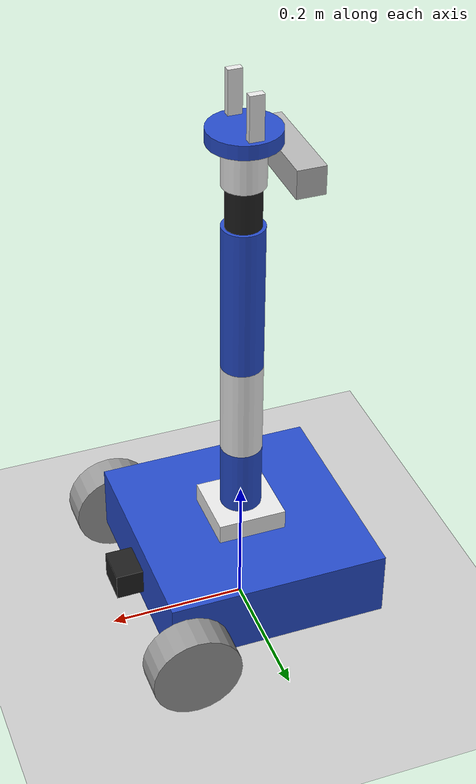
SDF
<sdf version="1.7">
 <world name="default">
  <model name="ground_plane">
   <static>1</static>
   <link name="link">
    <collision name="collision">
     <geometry><plane><normal>0 0 1</normal><size>100 100</size></plane></geometry>
     <surface><friction><ode><mu>100</mu><mu2>50</mu2></ode></friction></surface>
    </collision>
    <visual name="visual">
     <cast_shadows>0</cast_shadows>
     <geometry><plane><normal>0 0 1</normal><size>100 100</size></plane></geometry>
     <material>
      <script><uri>file://media/materials/scripts/gazebo.material</uri><name>Gazebo/Grey</name></script>
     </material>
    </visual>
    <velocity_decay><linear>0</linear><angular>0</angular></velocity_decay>
   </link>
  </model>
  <model name="six_arm">
   <link name="base_footprint">
    <inertial>
     <pose>0 0 0.112933 0 -0 0</pose>
     <mass>3.6</mass>
     <inertia>
      <ixx>0.0449434</ixx>
      <ixy>0</ixy>
      <ixz>-0.00447747</ixz>
      <iyy>0.0710223</iyy>
      <iyz>0</iyz>
      <izz>0.0496263</izz>
     </inertia>
    </inertial>
    <collision name="base_footprint_fixed_joint_lump__base_link_collision">
     <pose>0 0 0.1034 0 -0 0</pose>
     <geometry><box><size>0.32 0.32 0.1</size></box></geometry>
    </collision>
    <collision name="base_footprint_fixed_joint_lump__back_caster_link_collision_1">
     <pose>-0.14 0 0.0267 0 -0 0</pose>
     <geometry><sphere><radius>0.0267</radius></sphere></geometry>
    </collision>
    <collision name="base_footprint_fixed_joint_lump__camera_link_collision_2">
     <pose>0.18 0 0.0934 0 -0 0</pose>
     <geometry><box><size>0.04 0.055 0.04</size></box></geometry>
    </collision>
    <collision name="base_footprint_fixed_joint_lump__arm_base_link_collision_3">
     <pose>0 0 0.1634 0 -0 0</pose>
     <geometry><box><size>0.1 0.1 0.04</size></box></geometry>
    </collision>
    <collision name="base_footprint_fixed_joint_lump__laser_link_collision_4">
     <pose>0 0 0.1634 0 -0 0</pose>
     <geometry><cylinder><length>0.01</length><radius>0.015</radius></cylinder></geometry>
    </collision>
    <visual name="base_footprint_visual"><geometry><box><size>0.001 0.001 0.001</size></box></geometry></visual>
    <visual name="base_footprint_fixed_joint_lump__base_link_visual_1">
     <pose>0 0 0.1034 0 -0 0</pose>
     <geometry><box><size>0.32 0.32 0.1</size></box></geometry>
     <material>
      <script><name>Gazebo/Blue</name><uri>file://media/materials/scripts/gazebo.material</uri></script>
     </material>
    </visual>
    <visual name="base_footprint_fixed_joint_lump__back_caster_link_visual_2">
     <pose>-0.14 0 0.0267 0 -0 0</pose>
     <geometry><sphere><radius>0.0267</radius></sphere></geometry>
     <material>
      <script><name>Gazebo/Black</name><uri>file://media/materials/scripts/gazebo.material</uri></script>
     </material>
    </visual>
    <visual name="base_footprint_fixed_joint_lump__camera_link_visual_3">
     <pose>0.18 0 0.0934 0 -0 0</pose>
     <geometry><box><size>0.04 0.055 0.04</size></box></geometry>
     <material>
      <script><name>Gazebo/Black</name><uri>file://media/materials/scripts/gazebo.material</uri></script>
     </material>
    </visual>
    <visual name="base_footprint_fixed_joint_lump__arm_base_link_visual_4">
     <pose>0 0 0.1634 0 -0 0</pose>
     <geometry><box><size>0.1 0.1 0.04</size></box></geometry>
     <material>
      <script><name>Gazebo/White</name><uri>file://media/materials/scripts/gazebo.material</uri></script>
     </material>
    </visual>
    <visual name="base_footprint_fixed_joint_lump__laser_link_visual_5">
     <pose>0 0 0.1634 0 -0 0</pose>
     <geometry><cylinder><length>0.02</length><radius>0.031</radius></cylinder></geometry>
     <material>
      <script><name>Gazebo/Black</name><uri>file://media/materials/scripts/gazebo.material</uri></script>
     </material>
    </visual>
    <sensor name="camera_node" type="camera">
     <update_rate>30</update_rate>
     <camera name="head">
      <horizontal_fov>1.39626</horizontal_fov>
      <image><width>1280</width><height>720</height><format>R8G8B8</format></image>
      <clip><near>0.02</near><far>300</far></clip>
      <noise><type>gaussian</type><mean>0</mean><stddev>0.007</stddev></noise>
     </camera>
     <plugin name="gazebo_camera" filename="libgazebo_ros_camera.so">
      <ros><remapping>~/image_raw:=image_raw</remapping><remapping>~/camera_info:=camera_info</remapping></ros>
      <camera_name>camera</camera_name>
      <frame_name>camera_link</frame_name>
      <hack_baseline>0.2</hack_baseline>
     </plugin>
     <pose>0.18 0 0.0934 0 -0 0</pose>
    </sensor>
    <sensor name="lidar" type="ray">
     <update_rate>20</update_rate>
     <visualize>0</visualize>
     <ray>
      <scan>
       <horizontal>
        <samples>360</samples>
        <resolution>1</resolution>
        <min_angle>-3.14</min_angle>
        <max_angle>3.14</max_angle>
       </horizontal>
       <vertical><samples>1</samples><min_angle>0</min_angle><max_angle>0</max_angle></vertical>
      </scan>
      <range><min>0.5</min><max>30</max><resolution>0.01</resolution></range>
      <noise><type>gaussian</type><mean>0</mean><stddev>0.01</stddev></noise>
     </ray>
     <plugin name="gazebo_lidar" filename="libgazebo_ros_ray_sensor.so">
      <ros><namespace>/</namespace><remapping>~/out:=scan</remapping></ros>
      <output_type>sensor_msgs/LaserScan</output_type>
      <frame_name>laser_link</frame_name>
     </plugin>
     <pose>0 0 0.1634 0 -0 0</pose>
    </sensor>
    <disableCollisions>1</disableCollisions>
   </link>
   <joint name="joint1" type="revolute">
    <pose relative_to="base_footprint">0 0 0.2334 0 -0 0</pose>
    <parent>base_footprint</parent>
    <child>link1</child>
    <axis>
     <xyz>0 0 1</xyz>
     <limit><lower>-3.14</lower><upper>3.14</upper><effort>300</effort><velocity>1</velocity></limit>
     <dynamics><spring_reference>0</spring_reference><spring_stiffness>0</spring_stiffness></dynamics>
    </axis>
   </joint>
   <link name="link1">
    <pose relative_to="joint1">0 0 0 0 -0 0</pose>
    <inertial>
     <mass>0.1</mass>
     <inertia><ixx>0.0001</ixx><ixy>0</ixy><ixz>0</ixz><iyy>0.0001</iyy><iyz>0</iyz><izz>0.0001</izz></inertia>
    </inertial>
    <collision name="link1_collision">
     <geometry><cylinder><length>0.1</length><radius>0.03</radius></cylinder></geometry>
    </collision>
    <visual name="link1_visual">
     <geometry><cylinder><length>0.1</length><radius>0.03</radius></cylinder></geometry>
     <material>
      <script><name>Gazebo/Blue</name><uri>file://media/materials/scripts/gazebo.material</uri></script>
     </material>
    </visual>
   </link>
   <joint name="joint2" type="revolute">
    <pose relative_to="link1">0 0 0.05 0 -0 0</pose>
    <parent>link1</parent>
    <child>link2</child>
    <axis>
     <xyz>0 1 0</xyz>
     <limit><lower>-2.35</lower><upper>2.35</upper><effort>300</effort><velocity>1</velocity></limit>
     <dynamics><spring_reference>0</spring_reference><spring_stiffness>0</spring_stiffness></dynamics>
    </axis>
   </joint>
   <link name="link2">
    <pose relative_to="joint2">0 0 0 0 -0 0</pose>
    <inertial>
     <mass>0.1</mass>
     <inertia><ixx>0.0001</ixx><ixy>0</ixy><ixz>0</ixz><iyy>0.0001</iyy><iyz>0</iyz><izz>0.0001</izz></inertia>
    </inertial>
    <collision name="link2_collision">
     <pose>0 0 0.07 0 -0 0</pose>
     <geometry><cylinder><length>0.14</length><radius>0.03</radius></cylinder></geometry>
    </collision>
    <visual name="link2_visual">
     <pose>0 0 0.07 0 -0 0</pose>
     <geometry><cylinder><length>0.14</length><radius>0.03</radius></cylinder></geometry>
     <material>
      <script><name>Gazebo/White</name><uri>file://media/materials/scripts/gazebo.material</uri></script>
     </material>
    </visual>
   </link>
   <joint name="joint3" type="revolute">
    <pose relative_to="link2">0 0 0.14 0 -0 0</pose>
    <parent>link2</parent>
    <child>link3</child>
    <axis>
     <xyz>0 1 0</xyz>
     <limit><lower>-2.62</lower><upper>2.62</upper><effort>300</effort><velocity>1</velocity></limit>
     <dynamics><spring_reference>0</spring_reference><spring_stiffness>0</spring_stiffness></dynamics>
    </axis>
   </joint>
   <link name="link3">
    <pose relative_to="joint3">0 0 0 0 -0 0</pose>
    <inertial>
     <mass>0.1</mass>
     <inertia><ixx>0.0001</ixx><ixy>0</ixy><ixz>0</ixz><iyy>0.0001</iyy><iyz>0</iyz><izz>0.0001</izz></inertia>
    </inertial>
    <collision name="link3_collision">
     <pose>0 0 0.11 0 -0 0</pose>
     <geometry><cylinder><length>0.22</length><radius>0.03</radius></cylinder></geometry>
    </collision>
    <visual name="link3_visual">
     <pose>0 0 0.11 0 -0 0</pose>
     <geometry><cylinder><length>0.22</length><radius>0.03</radius></cylinder></geometry>
     <material>
      <script><name>Gazebo/Blue</name><uri>file://media/materials/scripts/gazebo.material</uri></script>
     </material>
    </visual>
   </link>
   <joint name="joint4" type="revolute">
    <pose relative_to="link3">0 0 0.22 0 -0 0</pose>
    <parent>link3</parent>
    <child>link4</child>
    <axis>
     <xyz>0 0 1</xyz>
     <limit><lower>-3.14</lower><upper>3.14</upper><effort>300</effort><velocity>1</velocity></limit>
     <dynamics><spring_reference>0</spring_reference><spring_stiffness>0</spring_stiffness></dynamics>
    </axis>
   </joint>
   <link name="link4">
    <pose relative_to="joint4">0 0 0 0 -0 0</pose>
    <inertial>
     <mass>0.1</mass>
     <inertia><ixx>0.0001</ixx><ixy>0</ixy><ixz>0</ixz><iyy>0.0001</iyy><iyz>0</iyz><izz>0.0001</izz></inertia>
    </inertial>
    <collision name="link4_collision">
     <pose>0 0 0.03 0 -0 0</pose>
     <geometry><cylinder><length>0.06</length><radius>0.025</radius></cylinder></geometry>
    </collision>
    <visual name="link4_visual">
     <pose>0 0 0.03 0 -0 0</pose>
     <geometry><cylinder><length>0.06</length><radius>0.025</radius></cylinder></geometry>
     <material>
      <script><name>Gazebo/Black</name><uri>file://media/materials/scripts/gazebo.material</uri></script>
     </material>
    </visual>
   </link>
   <joint name="joint5" type="revolute">
    <pose relative_to="link4">0 0 0.06 0 -0 0</pose>
    <parent>link4</parent>
    <child>link5</child>
    <axis>
     <xyz>0 -1 0</xyz>
     <limit><lower>-2.35</lower><upper>2.35</upper><effort>300</effort><velocity>1</velocity></limit>
     <dynamics><spring_reference>0</spring_reference><spring_stiffness>0</spring_stiffness></dynamics>
    </axis>
   </joint>
   <link name="link5">
    <pose relative_to="joint5">0 0 0 0 -0 0</pose>
    <inertial>
     <mass>0.1</mass>
     <inertia><ixx>0.0001</ixx><ixy>0</ixy><ixz>0</ixz><iyy>0.0001</iyy><iyz>0</iyz><izz>0.0001</izz></inertia>
    </inertial>
    <collision name="link5_collision">
     <pose>0 0 0.03 0 -0 0</pose>
     <geometry><cylinder><length>0.06</length><radius>0.03</radius></cylinder></geometry>
    </collision>
    <visual name="link5_visual">
     <pose>0 0 0.03 0 -0 0</pose>
     <geometry><cylinder><length>0.06</length><radius>0.03</radius></cylinder></geometry>
     <material>
      <script><name>Gazebo/White</name><uri>file://media/materials/scripts/gazebo.material</uri></script>
     </material>
    </visual>
   </link>
   <joint name="joint6" type="revolute">
    <pose relative_to="link5">0 0 0.06 0 -0 0</pose>
    <parent>link5</parent>
    <child>link6</child>
    <axis>
     <xyz>0 0 1</xyz>
     <limit><lower>-3.14</lower><upper>3.14</upper><effort>300</effort><velocity>1</velocity></limit>
     <dynamics><spring_reference>0</spring_reference><spring_stiffness>0</spring_stiffness></dynamics>
    </axis>
   </joint>
   <link name="link6">
    <pose relative_to="joint6">0 0 0 0 -0 0</pose>
    <inertial>
     <pose>0 0.003409 0.003818 0 -0 0</pose>
     <mass>0.11</mass>
     <inertia>
      <ixx>0.00022882</ixx>
      <ixy>0</ixy>
      <ixz>0</ixz>
      <iyy>0.000216036</iyy>
      <iyz>-1.43182e-05</iyz>
      <izz>0.000212784</izz>
     </inertia>
    </inertial>
    <collision name="link6_collision">
     <pose>0 0 0.01 0 -0 0</pose>
     <geometry><cylinder><length>0.02</length><radius>0.05</radius></cylinder></geometry>
    </collision>
    <collision name="link6_fixed_joint_lump__gripper_finger_link2_collision_1">
     <pose>0 0.0375 0.042 3.14159 1.57079 3.14159</pose>
     <geometry><box><size>0.08 0.01 0.02</size></box></geometry>
    </collision>
    <collision name="link6_fixed_joint_lump__camera_rgbd_link_collision_2">
     <pose>-0.06 0 -0.03 3.14159 -1.57079 3.14159</pose>
     <geometry><box><size>0.07 0.3 0.09</size></box></geometry>
    </collision>
    <visual name="link6_visual">
     <pose>0 0 0.01 0 -0 0</pose>
     <geometry><cylinder><length>0.02</length><radius>0.05</radius></cylinder></geometry>
     <material>
      <script><name>Gazebo/Blue</name><uri>file://media/materials/scripts/gazebo.material</uri></script>
     </material>
    </visual>
    <visual name="link6_fixed_joint_lump__gripper_finger_link2_visual_1">
     <pose>0 0.0375 0.042 3.14159 1.57079 3.14159</pose>
     <geometry><box><size>0.08 0.01 0.02</size></box></geometry>
     <material>
      <script><name>Gazebo/White</name><uri>file://media/materials/scripts/gazebo.material</uri></script>
     </material>
    </visual>
    <visual name="link6_fixed_joint_lump__camera_rgbd_link_visual_2">
     <pose>-0.06 0 -0.03 -1.5708 0 1.5708</pose>
     <geometry><box><size>0.15 0.04 0.04</size></box></geometry>
    </visual>
    <sensor name="camera_rgbd" type="depth">
     <always_on>1</always_on>
     <update_rate>15</update_rate>
     <camera name="camera">
      <horizontal_fov>1.0472</horizontal_fov>
      <image><format>R8G8B8</format><width>640</width><height>480</height></image>
      <clip><near>0.05</near><far>8</far></clip>
     </camera>
     <plugin name="camera_rgbd_controller" filename="libgazebo_ros_camera.so">
      <ros><namespace>camera_rgbd</namespace></ros>
      <camera_name>camera_rgbd</camera_name>
      <frame_name>camera_rgbd_frame_optical</frame_name>
      <hack_baseline>0.07</hack_baseline>
      <min_depth>0.001</min_depth>
      <max_depth>300.0</max_depth>
     </plugin>
     <pose>-0.06 0 -0.03 3.14159 -1.57079 3.14159</pose>
    </sensor>
   </link>
   <joint name="finger_joint1" type="prismatic">
    <pose relative_to="link6">0 -0.0375 0.042 3.14159 1.57079 3.14159</pose>
    <parent>link6</parent>
    <child>gripper_finger_link1</child>
    <axis>
     <xyz>0 1 0</xyz>
     <limit><lower>0</lower><upper>0.06</upper><effort>100</effort><velocity>1</velocity></limit>
     <dynamics>
      <damping>50</damping>
      <friction>1</friction>
      <spring_reference>0</spring_reference>
      <spring_stiffness>0</spring_stiffness>
     </dynamics>
    </axis>
   </joint>
   <link name="gripper_finger_link1">
    <pose relative_to="finger_joint1">0 0 0 0 -0 0</pose>
    <inertial>
     <mass>0.01</mass>
     <inertia><ixx>0.0001</ixx><ixy>0</ixy><ixz>0</ixz><iyy>0.0001</iyy><iyz>0</iyz><izz>0.0001</izz></inertia>
    </inertial>
    <collision name="gripper_finger_link1_collision">
     <geometry><box><size>0.08 0.01 0.02</size></box></geometry>
    </collision>
    <visual name="gripper_finger_link1_visual">
     <geometry><box><size>0.08 0.01 0.02</size></box></geometry>
     <material>
      <script><name>Gazebo/White</name><uri>file://media/materials/scripts/gazebo.material</uri></script>
     </material>
    </visual>
   </link>
   <joint name="left_wheel_joint" type="revolute">
    <pose relative_to="base_footprint">0.14 0.185 0.0684 0 -0 0</pose>
    <parent>base_footprint</parent>
    <child>left_wheel_link</child>
    <axis>
     <xyz>0 1 0</xyz>
     <limit><lower>-1e+16</lower><upper>1e+16</upper></limit>
     <dynamics><spring_reference>0</spring_reference><spring_stiffness>0</spring_stiffness></dynamics>
    </axis>
   </joint>
   <link name="left_wheel_link">
    <pose relative_to="left_wheel_joint">0 0 0 0 -0 0</pose>
    <inertial>
     <mass>0.4</mass>
     <inertia>
      <ixx>0.000505833</ixx>
      <ixy>0</ixy>
      <ixz>0</ixz>
      <iyy>0.000505833</iyy>
      <iyz>0</iyz>
      <izz>0.000845</izz>
     </inertia>
    </inertial>
    <collision name="left_wheel_link_collision">
     <pose>0 0 0 1.5708 -0 0</pose>
     <geometry><cylinder><length>0.05</length><radius>0.065</radius></cylinder></geometry>
     <surface><friction><ode><mu>100000</mu><mu2>100000</mu2></ode></friction></surface>
    </collision>
    <visual name="left_wheel_link_visual">
     <pose>0 0 0 1.5708 -0 0</pose>
     <geometry><cylinder><length>0.05</length><radius>0.065</radius></cylinder></geometry>
     <material>
      <script><name>Gazebo/Gray</name><uri>file://media/materials/scripts/gazebo.material</uri></script>
     </material>
    </visual>
   </link>
   <joint name="right_wheel_joint" type="revolute">
    <pose relative_to="base_footprint">0.14 -0.185 0.0684 0 -0 0</pose>
    <parent>base_footprint</parent>
    <child>right_wheel_link</child>
    <axis>
     <xyz>0 1 0</xyz>
     <limit><lower>-1e+16</lower><upper>1e+16</upper></limit>
     <dynamics><spring_reference>0</spring_reference><spring_stiffness>0</spring_stiffness></dynamics>
    </axis>
   </joint>
   <link name="right_wheel_link">
    <pose relative_to="right_wheel_joint">0 0 0 0 -0 0</pose>
    <inertial>
     <mass>0.4</mass>
     <inertia>
      <ixx>0.000505833</ixx>
      <ixy>0</ixy>
      <ixz>0</ixz>
      <iyy>0.000505833</iyy>
      <iyz>0</iyz>
      <izz>0.000845</izz>
     </inertia>
    </inertial>
    <collision name="right_wheel_link_collision">
     <pose>0 0 0 1.5708 -0 0</pose>
     <geometry><cylinder><length>0.05</length><radius>0.065</radius></cylinder></geometry>
     <surface><friction><ode><mu>100000</mu><mu2>100000</mu2></ode></friction></surface>
    </collision>
    <visual name="right_wheel_link_visual">
     <pose>0 0 0 1.5708 -0 0</pose>
     <geometry><cylinder><length>0.05</length><radius>0.065</radius></cylinder></geometry>
     <material>
      <script><name>Gazebo/Gray</name><uri>file://media/materials/scripts/gazebo.material</uri></script>
     </material>
    </visual>
   </link>
   <plugin name="differential_drive_controller" filename="libgazebo_ros_diff_drive.so">
    <update_rate>30</update_rate>
    <left_joint>left_wheel_joint</left_joint>
    <right_joint>right_wheel_joint</right_joint>
    <wheel_separation>0.76</wheel_separation>
    <wheel_diameter>0.13</wheel_diameter>
    <max_wheel_torque>10</max_wheel_torque>
    <max_wheel_acceleration>1.0</max_wheel_acceleration>
    <command_topic>cmd_vel_robot</command_topic>
    <publish_odom>1</publish_odom>
    <publish_odom_tf>1</publish_odom_tf>
    <publish_wheel_tf>1</publish_wheel_tf>
    <odometry_topic>odom</odometry_topic>
    <odometry_frame>odom</odometry_frame>
    <robot_base_frame>base_footprint</robot_base_frame>
    <odometry_source>1</odometry_source>
   </plugin>
   <static>0</static>
   <plugin name="gazebo_ros2_control" filename="libgazebo_ros2_control.so">
    <parameters>/home/ros/dev_ws/install/mybot/share/mybot/config/ros2_controllers.yaml</parameters>
    <robot_param_node>robot_state_publisher</robot_param_node>
   </plugin>
  </model>
 </world>
</sdf>
